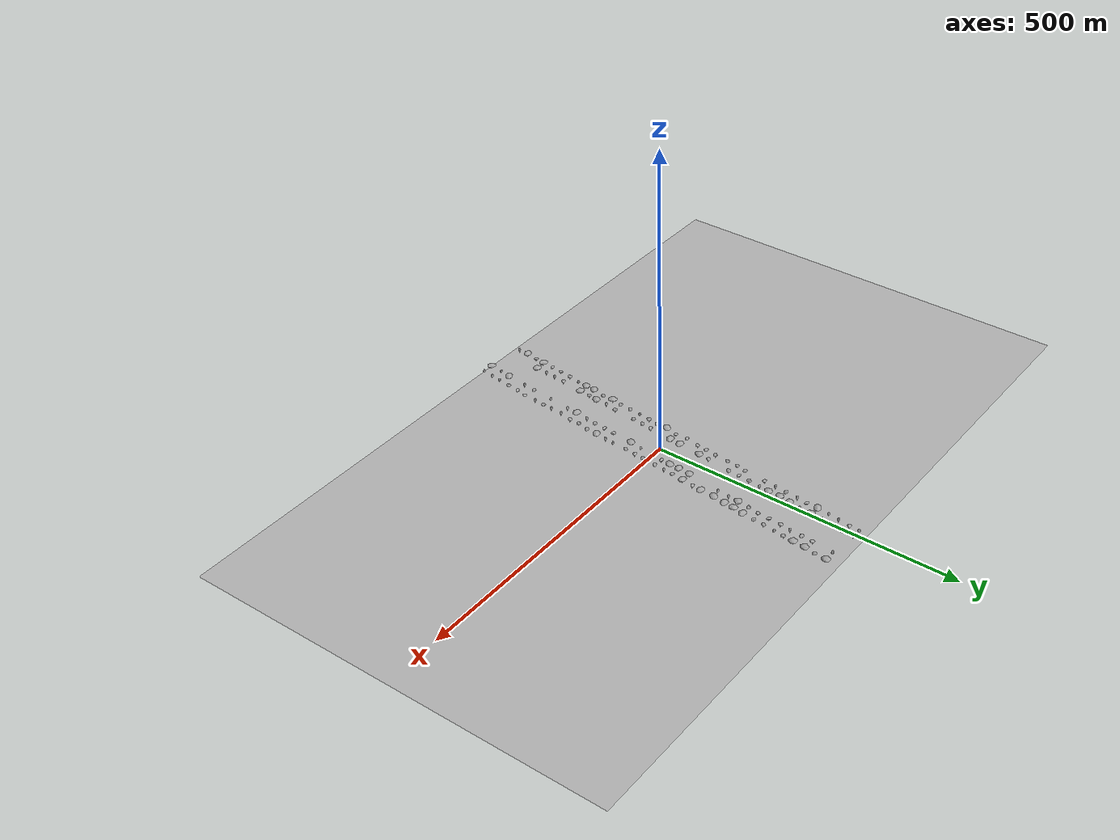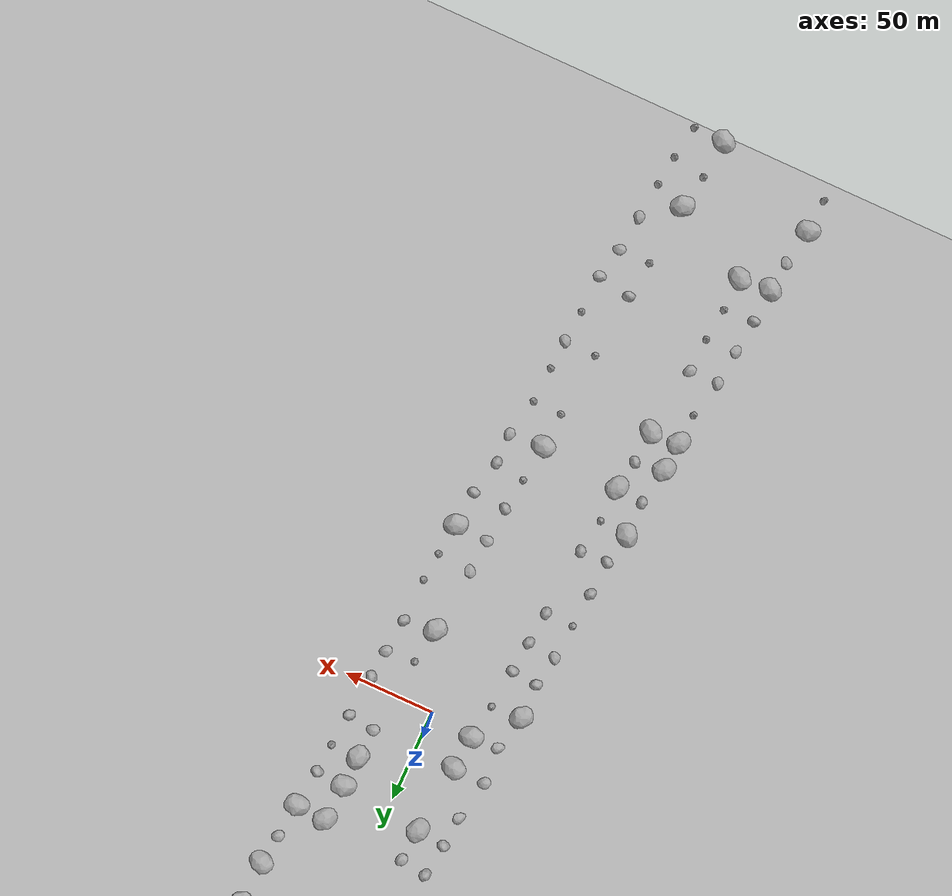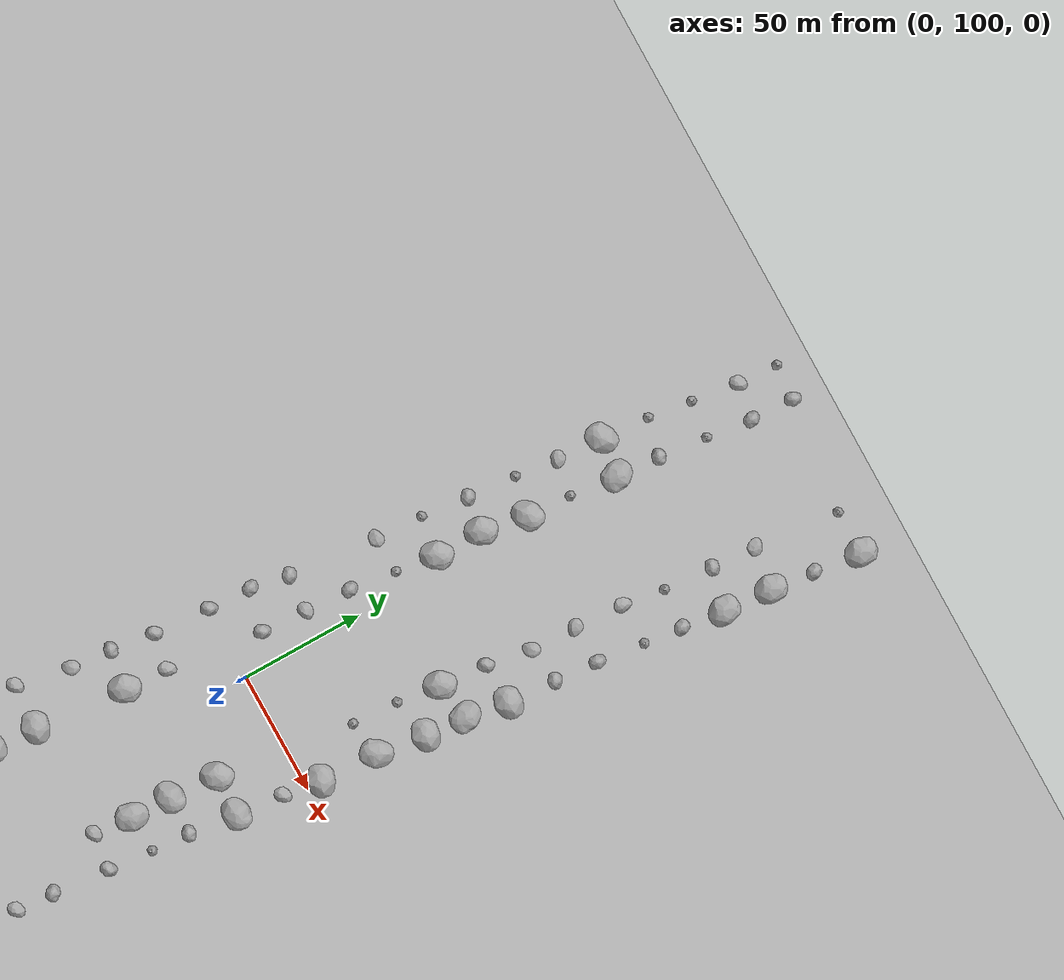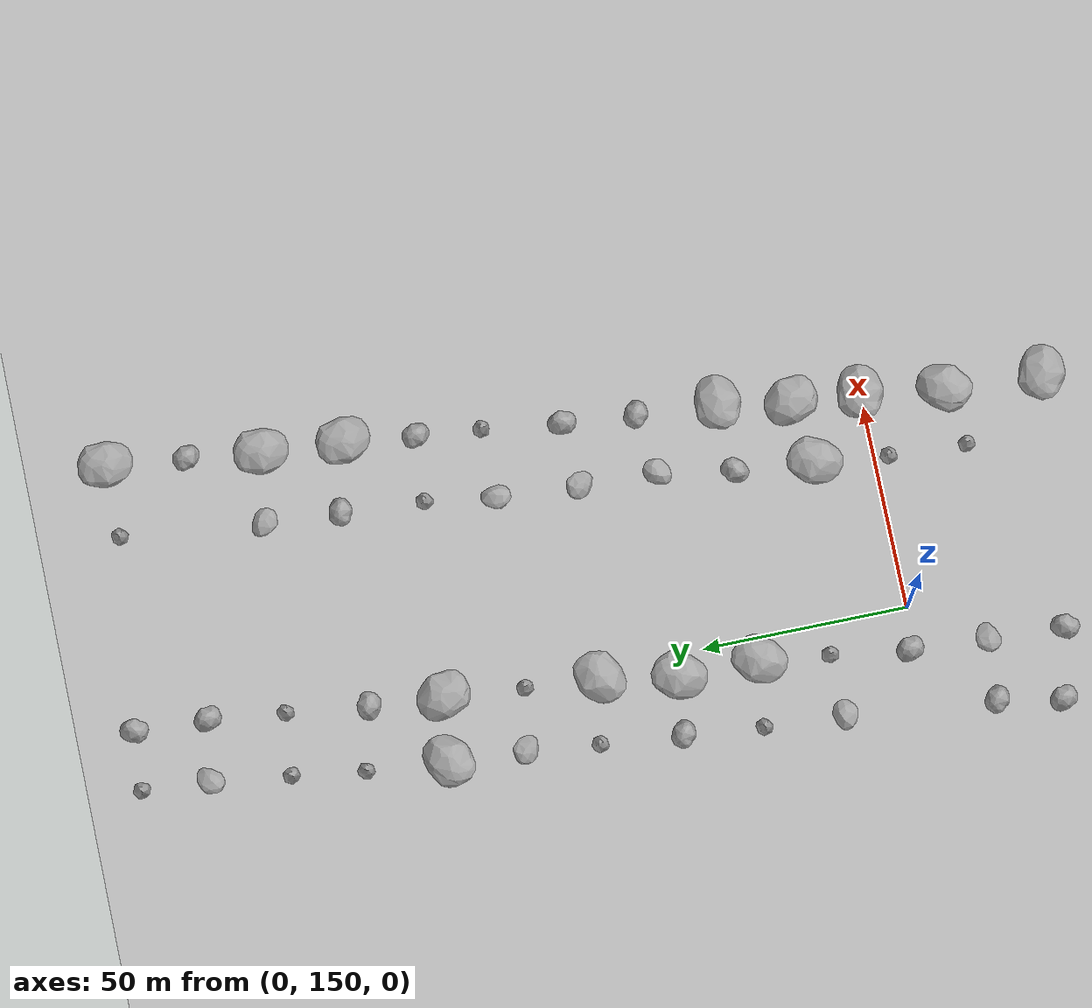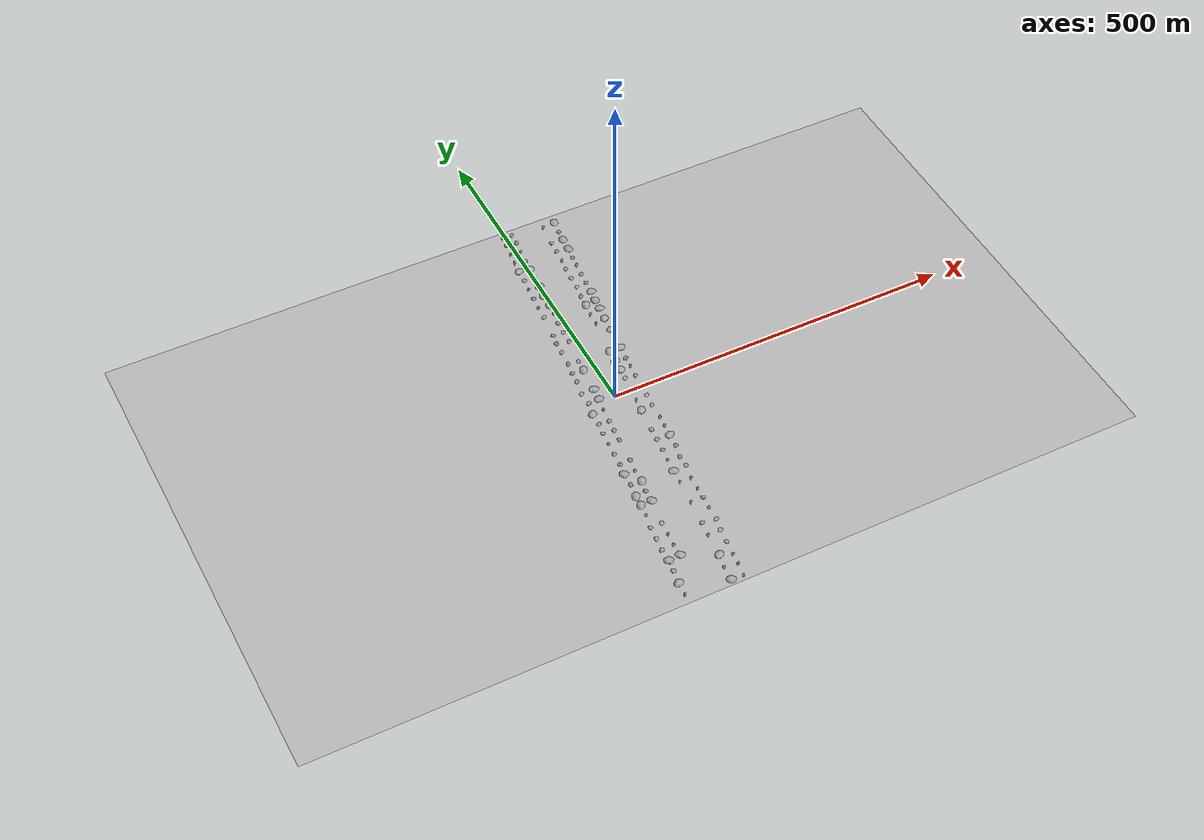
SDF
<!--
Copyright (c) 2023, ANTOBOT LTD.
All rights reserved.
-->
<?xml version="1.0" ?>
<sdf version="1.4">
  <world name="default">

    <!-- A global light source -->
    <include>
      <uri>model://sun</uri>
    </include>

    <light type="directional" name="sun_1">
      <cast_shadows>true</cast_shadows>
      <pose>75 75 50 0 0 0</pose>
      <diffuse>0.8 0.8 0.8 1</diffuse>
      <specular>0.8 0.8 0.8 1</specular>
      <attenuation>
        <range>1000</range>
        <constant>0.9</constant>
        <linear>0.01</linear>
        <quadratic>0.001</quadratic>
      </attenuation>
      <direction>-0.5 0.1 -0.9</direction>
    </light>

    <scene>
      <sky>
        <clouds>
          <speed>12</speed>
        </clouds>
      </sky>
    </scene>

    <!-- Combined World -->
    <model name="windsor_terrain">
      <include>
        <pose>0 0 0 0 0 0</pose>
        <uri>model://windsor_terrain</uri>
      </include>
    </model>

[start]
    <model name="tree0">
      <include>
        <pose>69.63945007324219 312.5484619140625 -0.010585967451334 0.019601332173173867 -0.009493055838370462 2.4453329482619153 </pose>
        <scale>1.0931128544964075 0.8769362852459166 0.8393916551556391 </scale>
        <uri>model://windsor_tree_3</uri>
      </include>
    </model>

    <model name="tree1">
      <include>
        <pose>67.50929260253906 295.0337829589844 -0.010585967451334 -0.006051572784280932 0.006144942787973461 1.8560908090820818 </pose>
        <scale>0.9721722166989776 1.108634498845052 0.9939109545550641 </scale>
        <uri>model://windsor_tree_1</uri>
      </include>
    </model>

    <model name="tree2">
      <include>
        <pose>66.08917999267578 275.15228271484375 -0.010585967451334 -0.019048987979365 0.005220290297220893 2.1212056852900214 </pose>
        <scale>0.89058990072401 1.0460393944888573 0.8652396571809416 </scale>
        <uri>model://windsor_tree_1</uri>
      </include>
    </model>

    <model name="tree3">
      <include>
        <pose>63.959022521972656 257.6375732421875 -0.010585967451334 -0.018665837172359593 -0.01887259090619908 2.3844670330792996 </pose>
        <scale>1.0845305431239491 0.8198932848069501 1.0102477034304058 </scale>
        <uri>model://windsor_tree_3</uri>
      </include>
    </model>

    <model name="tree4">
      <include>
        <pose>71.76962280273438 332.1932678222656 -0.010585967451334 0.011158046879193619 0.017123873350229354 1.8979454718723958 </pose>
        <scale>1.042212518969027 0.9467706627091457 1.1642928820945122 </scale>
        <uri>model://windsor_tree_1</uri>
      </include>
    </model>

    <model name="tree5">
      <include>
        <pose>54.491634368896484 331.48321533203125 -0.010585967451334 -0.012472618356515409 -0.018236357282290283 0.18090401457163585 </pose>
        <scale>1.1299864324013127 1.0421977249993992 1.0338838775833383 </scale>
        <uri>model://windsor_tree_4</uri>
      </include>
    </model>

    <model name="tree6">
      <include>
        <pose>60.4371452331543 221.88873291015625 -0.010585967451334 -0.0011259919725913614 0.0037464375983502288 -1.30473630646026 </pose>
        <scale>0.9780405794727429 0.9107927291363028 0.9105920940411283 </scale>
        <uri>model://windsor_tree_3</uri>
      </include>
    </model>

    <model name="tree7">
      <include>
        <pose>58.30698776245117 204.37405395507812 -0.010585967451334 -0.008860788803581512 0.003430250134960868 3.0163904898984337 </pose>
        <scale>1.0606244913573992 0.9917846165029451 0.8103041737397406 </scale>
        <uri>model://windsor_tree_3</uri>
      </include>
    </model>

    <model name="tree8">
      <include>
        <pose>56.88687515258789 184.4925537109375 -0.010585967451334 -0.01660571444586669 0.009926397220078771 -2.8945898981156235 </pose>
        <scale>1.1570101107029385 0.8994480895798397 0.9763418032192646 </scale>
        <uri>model://windsor_tree_1</uri>
      </include>
    </model>

    <model name="tree9">
      <include>
        <pose>54.756717681884766 166.97784423828125 -0.010585967451334 0.009748468193394918 -0.0048230289287691346 -0.8998418273340549 </pose>
        <scale>1.1756060179687389 1.1513030347317854 0.8848140074365209 </scale>
        <uri>model://windsor_tree_1</uri>
      </include>
    </model>

    <model name="tree10">
      <include>
        <pose>62.567317962646484 241.53353881835938 -0.010585967451334 0.013425772802577996 0.01406100051615446 -0.7555159430062188 </pose>
        <scale>0.9916607770605524 0.8772890445118406 1.0193223432664518 </scale>
        <uri>model://windsor_tree_4</uri>
      </include>
    </model>

    <model name="tree11">
      <include>
        <pose>49.87153625488281 129.86569213867188 -0.010585967451334 -0.019075425676043197 -0.00712817525705018 -1.9024540423311873 </pose>
        <scale>1.0808418244532312 0.8287099632588234 0.8311636354675833 </scale>
        <uri>model://windsor_tree_1</uri>
      </include>
    </model>

    <model name="tree12">
      <include>
        <pose>48.423030853271484 106.55696868896484 -0.010585967451334 0.0002504762060992344 0.016373257540709337 3.0971074785802357 </pose>
        <scale>1.182487400972857 0.8767355917900591 0.9958074327899978 </scale>
        <uri>model://windsor_tree_1</uri>
      </include>
    </model>

    <model name="tree13">
      <include>
        <pose>47.0029182434082 90.765380859375 -0.010585967451334 0.008800022877509625 0.007841457453176357 -1.44166016349858 </pose>
        <scale>0.8665808076284928 0.8030254077571153 0.926445863412109 </scale>
        <uri>model://windsor_tree_2</uri>
      </include>
    </model>

    <model name="tree14">
      <include>
        <pose>44.87276077270508 72.22819519042969 -0.010585967451334 0.015609339114548263 0.007126699188909541 0.35393338545886044 </pose>
        <scale>1.1246648678967528 1.1274400075111384 0.9573451229999534 </scale>
        <uri>model://windsor_tree_1</uri>
      </include>
    </model>

    <model name="tree15">
      <include>
        <pose>52.34253692626953 150.19215393066406 -0.010585967451334 0.017938573415547675 -0.01774870075423803 -2.99774287205987 </pose>
        <scale>0.9779655010169124 0.9976680504996971 0.9100091134213555 </scale>
        <uri>model://windsor_tree_1</uri>
      </include>
    </model>

    <model name="tree16">
      <include>
        <pose>42.62898635864258 52.0247917175293 -0.010585967451334 -0.004773336372412902 0.002443938794598824 0.0039417067369535985 </pose>
        <scale>0.9732192674300547 1.019596417979478 0.8804759940947003 </scale>
        <uri>model://windsor_tree_3</uri>
      </include>
    </model>

    <model name="tree17">
      <include>
        <pose>41.2088737487793 36.23320388793945 -0.010585967451334 0.013356492506540429 0.0015852397654074896 -0.5014905891358064 </pose>
        <scale>0.858498258716029 1.1354633232729152 1.1947093957590278 </scale>
        <uri>model://windsor_tree_4</uri>
      </include>
    </model>

    <model name="tree18">
      <include>
        <pose>39.07871627807617 17.69601821899414 -0.010585967451334 -0.006494052569999803 -0.01697678739626689 -2.2250201152106226 </pose>
        <scale>1.1078196845472081 1.1747623847729145 0.9156489046380698 </scale>
        <uri>model://windsor_tree_3</uri>
      </include>
    </model>

    <model name="tree19">
      <include>
        <pose>37.51659393310547 -5.2339935302734375 -0.010585967451334 -0.0026392210082761026 0.010945509133011268 -0.3862882947617856 </pose>
        <scale>0.80057823208718 0.8174478886803401 0.8038953397974511 </scale>
        <uri>model://windsor_tree_3</uri>
      </include>
    </model>

    <model name="tree20">
      <include>
        <pose>36.09648132324219 -21.02558135986328 -0.010585967451334 -0.010093177400587364 -0.01748387417605195 -1.5205294173806159 </pose>
        <scale>0.9719734874556688 1.0598957914682356 0.8655094422597407 </scale>
        <uri>model://windsor_tree_2</uri>
      </include>
    </model>

    <model name="tree21">
      <include>
        <pose>33.96632385253906 -39.562767028808594 -0.010585967451334 -0.012788961830941959 -0.018741631912187865 -1.8754901131551502 </pose>
        <scale>0.9093053108945753 1.0298631988702605 1.056211446109351 </scale>
        <uri>model://windsor_tree_3</uri>
      </include>
    </model>

    <model name="tree22">
      <include>
        <pose>33.42668151855469 -62.83360290527344 -0.010585967451334 -0.0027886545471153754 -0.015306109327201573 -1.1916182997497278 </pose>
        <scale>0.9297910859542878 0.8331781945468886 0.9983353119926865 </scale>
        <uri>model://windsor_tree_4</uri>
      </include>
    </model>

    <model name="tree23">
      <include>
        <pose>32.006568908691406 -78.62519073486328 -0.010585967451334 0.013459065467844259 -0.016924401364660543 -0.8203334818268129 </pose>
        <scale>1.1216102062440167 1.0222889637026937 1.120111718992169 </scale>
        <uri>model://windsor_tree_4</uri>
      </include>
    </model>

    <model name="tree24">
      <include>
        <pose>29.87641143798828 -97.1623764038086 -0.010585967451334 0.004206252816814516 0.0040040622772044045 -2.3669190138719123 </pose>
        <scale>0.9269214646352564 0.849784727782253 0.8934057930881033 </scale>
        <uri>model://windsor_tree_1</uri>
      </include>
    </model>

    <model name="tree25">
      <include>
        <pose>28.513107299804688 -115.9078140258789 -0.010585967451334 -0.011655941471647249 0.018269601571639617 -2.908246407917132 </pose>
        <scale>1.1952943178846973 1.0120149109897352 0.9112996854355019 </scale>
        <uri>model://windsor_tree_3</uri>
      </include>
    </model>

    <model name="tree26">
      <include>
        <pose>24.082368850708008 -134.6532440185547 -0.010585967451334 -0.004304873541902059 -0.018551270808193396 1.8627045169297438 </pose>
        <scale>1.0425459324592419 1.1269853713951632 0.9674717289794915 </scale>
        <uri>model://windsor_tree_3</uri>
      </include>
    </model>

    <model name="tree27">
      <include>
        <pose>24.764020919799805 -151.69454956054688 -0.010585967451334 -0.011844173147038188 0.016444955725431542 -0.6274809444185423 </pose>
        <scale>1.0874021629811428 0.9281841931153882 0.8533672451068072 </scale>
        <uri>model://windsor_tree_2</uri>
      </include>
    </model>

    <model name="tree28">
      <include>
        <pose>19.992456436157227 -172.8257598876953 -0.010585967451334 0.003541161784974295 -0.001955178054427322 -0.9613107702887955 </pose>
        <scale>0.8077755004700979 1.084816613827202 1.0239666639437652 </scale>
        <uri>model://windsor_tree_4</uri>
      </include>
    </model>

    <model name="tree29">
      <include>
        <pose>18.96997833251953 -192.5936737060547 -0.010585967451334 0.0014865065703151617 0.010099465178746773 -0.7159012892227556 </pose>
        <scale>0.8200856858175741 0.9908912404978308 0.8822357593230478 </scale>
        <uri>model://windsor_tree_4</uri>
      </include>
    </model>

    <model name="tree30">
      <include>
        <pose>18.629152297973633 -208.6125030517578 -0.010585967451334 -0.004240063679798262 -0.006453917861876742 0.10884879296450611 </pose>
        <scale>0.8876864034665499 1.0458843816864802 0.8283975223105581 </scale>
        <uri>model://windsor_tree_2</uri>
      </include>
    </model>

    <model name="tree31">
      <include>
        <pose>16.92502212524414 -226.67628479003906 -0.010585967451334 0.019318159883009448 0.007787990392181036 1.7378007068591281 </pose>
        <scale>0.9803580813967522 1.1300818328759479 0.975748086119617 </scale>
        <uri>model://windsor_tree_4</uri>
      </include>
    </model>

    <model name="tree32">
      <include>
        <pose>15.902544021606445 -247.4666748046875 -0.010585967451334 -0.008090950216554735 0.013469729226868472 1.3008982445707296 </pose>
        <scale>0.8349495950961855 1.0564427072409397 0.90634198413428 </scale>
        <uri>model://windsor_tree_2</uri>
      </include>
    </model>

    <model name="tree33">
      <include>
        <pose>12.494283676147461 -265.53045654296875 -0.010585967451334 0.010582581472480018 -0.011962208653695105 -1.8534865958106563 </pose>
        <scale>1.1893890628136006 0.8596266382452251 1.0816352040967656 </scale>
        <uri>model://windsor_tree_2</uri>
      </include>
    </model>

    <model name="tree34">
      <include>
        <pose>10.44932746887207 -284.9575500488281 -0.010585967451334 -0.007519324442431606 -0.010861727624230216 -0.27894379574872463 </pose>
        <scale>1.1554483680051293 1.1342763587951354 0.8104841564053403 </scale>
        <uri>model://windsor_tree_2</uri>
      </include>
    </model>

    <model name="tree35">
      <include>
        <pose>8.063545227050781 -305.4071044921875 -0.010585967451334 0.019519868808952293 -0.008330697560488307 -0.5664340382321735 </pose>
        <scale>0.8600260507848495 0.9631965749232724 0.844054842954109 </scale>
        <uri>model://windsor_tree_4</uri>
      </include>
    </model>

    <model name="tree36">
      <include>
        <pose>6.018589019775391 -322.1075744628906 -0.010585967451334 -0.00993671255468099 0.014669872067650549 -1.3435381803071913 </pose>
        <scale>0.9808108269495062 0.8334536494449462 1.0768986070826947 </scale>
        <uri>model://windsor_tree_4</uri>
      </include>
    </model>

    <model name="tree37">
      <include>
        <pose>2.9511544704437256 -340.8529968261719 -0.010585967451334 -0.010273617911829503 -0.015554404369554048 -2.4209008109879466 </pose>
        <scale>1.1782775830367989 0.9567231161512495 1.16984113327098 </scale>
        <uri>model://windsor_tree_4</uri>
      </include>
    </model>

    <model name="tree38">
      <include>
        <pose>-13.408496856689453 -340.1713562011719 -0.010585967451334 0.015174704472317068 0.012065953082051103 -0.1674015999405163 </pose>
        <scale>0.9403706079773463 0.8652989082233871 0.9219186458104625 </scale>
        <uri>model://windsor_tree_1</uri>
      </include>
    </model>

    <model name="tree39">
      <include>
        <pose>-12.04519271850586 -318.6993103027344 -0.010585967451334 0.0020593367615616837 0.010756110066351698 2.846293654788967 </pose>
        <scale>0.8216055297537392 1.0048071193354784 1.1164990076109977 </scale>
        <uri>model://windsor_tree_4</uri>
      </include>
    </model>

    <model name="tree40">
      <include>
        <pose>-8.636932373046875 -300.2947082519531 -0.010585967451334 -0.006514140848431271 0.013014786916251155 -2.270641121985018 </pose>
        <scale>0.9128839623260087 0.8503296282258304 0.8760801023190015 </scale>
        <uri>model://windsor_tree_1</uri>
      </include>
    </model>

    <model name="tree41">
      <include>
        <pose>-4.887845993041992 -265.18963623046875 -0.010585967451334 -0.019928571750969865 0.01889062241889065 2.0710005035036363 </pose>
        <scale>1.0882626633463948 1.0656740177280928 1.176864092877124 </scale>
        <uri>model://windsor_tree_4</uri>
      </include>
    </model>

    <model name="tree42">
      <include>
        <pose>-2.8428895473480225 -244.7400665283203 -0.010585967451334 -0.010322053509391962 0.005566298777711542 -2.737134658632552 </pose>
        <scale>0.9775546878012985 0.8389097772989831 1.0390022602791305 </scale>
        <uri>model://windsor_tree_3</uri>
      </include>
    </model>

    <model name="tree43">
      <include>
        <pose>0.5653712749481201 -208.6125030517578 -0.010585967451334 3.3288971713361926e-05 0.01016817421381339 0.6658654952742324 </pose>
        <scale>0.8203366847173872 0.9761945457637566 0.9718630797142862 </scale>
        <uri>model://windsor_tree_4</uri>
      </include>
    </model>

    <model name="tree44">
      <include>
        <pose>4.314457893371582 -172.4849395751953 -0.010585967451334 -0.01683031609315668 0.019767751338151018 2.507395565365831 </pose>
        <scale>1.0226141365910346 1.0025523096096205 1.1892783067110195 </scale>
        <uri>model://windsor_tree_4</uri>
      </include>
    </model>

    <model name="tree45">
      <include>
        <pose>4.996109962463379 -153.739501953125 -0.010585967451334 0.00703100068166505 0.001785978327793817 -3.0171757285567806 </pose>
        <scale>1.0324930389144058 0.9208189984215012 0.8445395711055145 </scale>
        <uri>model://windsor_tree_1</uri>
      </include>
    </model>

    <model name="tree46">
      <include>
        <pose>7.722718238830566 -132.60829162597656 -0.010585967451334 0.0016127766179614943 0.017845154124859295 1.0882602815366176 </pose>
        <scale>1.0560991460545197 1.149998484019906 0.914545328328238 </scale>
        <uri>model://windsor_tree_4</uri>
      </include>
    </model>

    <model name="tree47">
      <include>
        <pose>9.767674446105957 -114.88533020019531 -0.010585967451334 0.016407336614799515 0.018879227840539786 2.805476102074888 </pose>
        <scale>1.0990351845875952 1.080904191115248 1.0618922907730195 </scale>
        <uri>model://windsor_tree_3</uri>
      </include>
    </model>

    <model name="tree48">
      <include>
        <pose>11.812630653381348 -95.799072265625 -0.010585967451334 -0.01622444389649435 0.015078948414963048 -2.088628076464069 </pose>
        <scale>0.9620850953395124 0.8606807426751955 1.1944633117191559 </scale>
        <uri>model://windsor_tree_2</uri>
      </include>
    </model>

    <model name="tree49">
      <include>
        <pose>12.835108757019043 -77.39446258544922 -0.010585967451334 -0.007596849815822888 0.003051265224805623 -3.076942037715102 </pose>
        <scale>0.8607521745342284 0.9345293636997232 0.8111454107500555 </scale>
        <uri>model://windsor_tree_2</uri>
      </include>
    </model>

    <model name="tree50">
      <include>
        <pose>16.92502212524414 -42.221214294433594 -0.010585967451334 0.002362079055075267 0.019803456297878396 -1.8334530225546888 </pose>
        <scale>1.0870264134598278 0.9965985297692274 1.1467584043475625 </scale>
        <uri>model://windsor_tree_1</uri>
      </include>
    </model>

    <model name="tree51">
      <include>
        <pose>19.787961959838867 -21.771650314331055 -0.010585967451334 -0.003895069202556608 -0.01171207116908802 -0.08210429130554742 </pose>
        <scale>1.1346661850122992 1.1427269899177843 0.8622216054645715 </scale>
        <uri>model://windsor_tree_4</uri>
      </include>
    </model>

    <model name="tree52">
      <include>
        <pose>24.695858001708984 19.536470413208008 -0.010585967451334 -0.008727157080272128 0.018714370813191366 -1.8310990571848274 </pose>
        <scale>1.0768497457789512 1.1460511800735371 1.18059599501037 </scale>
        <uri>model://windsor_tree_2</uri>
      </include>
    </model>

    <model name="tree53">
      <include>
        <pose>26.115966796875 35.39434814453125 -0.010585967451334 0.001814394216173465 0.013293491703388473 -1.5120113308069818 </pose>
        <scale>1.1811462246912718 0.8438738139128739 1.0688622540256187 </scale>
        <uri>model://windsor_tree_1</uri>
      </include>
    </model>

    <model name="tree54">
      <include>
        <pose>26.826021194458008 52.909019470214844 -0.010585967451334 0.01841033393066654 -0.002373311049072603 0.4939889262216419 </pose>
        <scale>0.8004556196964251 0.8229174569750696 1.018440987441535 </scale>
        <uri>model://windsor_tree_1</uri>
      </include>
    </model>

    <model name="tree55">
      <include>
        <pose>28.246129989624023 72.79054260253906 -0.010585967451334 -0.013645098306204329 0.004333679408359336 1.1285426624206685 </pose>
        <scale>1.1102729642001075 1.1412424332923996 0.9149408160599743 </scale>
        <uri>model://windsor_tree_1</uri>
      </include>
    </model>

    <model name="tree56">
      <include>
        <pose>35.82004165649414 127.93809509277344 -0.010585967451334 0.007393702243919817 0.0028831290355297162 1.5824608018218034 </pose>
        <scale>0.834290477388276 1.0676089167625966 1.1639095292208856 </scale>
        <uri>model://windsor_tree_4</uri>
      </include>
    </model>

    <model name="tree57">
      <include>
        <pose>36.530094146728516 147.10955810546875 -0.010585967451334 -0.01740758525676159 -0.01662604016165041 -2.9972143041398596 </pose>
        <scale>1.0965291919878464 1.0573949542849197 1.1475529954795796 </scale>
        <uri>model://windsor_tree_4</uri>
      </include>
    </model>

    <model name="tree58">
      <include>
        <pose>38.660255432128906 165.33428955078125 -0.010585967451334 0.0008924341308311629 -0.006555650341604461 1.4206905890092636 </pose>
        <scale>1.1088211153626006 1.0439131574725249 1.1891537131283987 </scale>
        <uri>model://windsor_tree_1</uri>
      </include>
    </model>

    <model name="tree59">
      <include>
        <pose>40.553733825683594 184.26907348632812 -0.010585967451334 -8.645049316175629e-05 0.007529528190301334 1.1859139437991062 </pose>
        <scale>0.8798517481636717 0.9103399679928151 1.0199002406735187 </scale>
        <uri>model://windsor_tree_3</uri>
      </include>
    </model>

    <model name="tree60">
      <include>
        <pose>43.393951416015625 202.49380493164062 -0.010585967451334 0.011960768301215233 0.0005857779485471774 1.8623817064784798 </pose>
        <scale>1.0791415358273961 0.9082193159762793 0.8938283839957649 </scale>
        <uri>model://windsor_tree_2</uri>
      </include>
    </model>

    <model name="tree61">
      <include>
        <pose>44.10400390625 220.95521545410156 -0.010585967451334 -0.012448447001600482 -0.00829243917076634 -2.9342519680151926 </pose>
        <scale>1.0858502899514824 1.047480610211256 1.1216892014906246 </scale>
        <uri>model://windsor_tree_2</uri>
      </include>
    </model>

    <model name="tree62">
      <include>
        <pose>45.99748229980469 241.3101043701172 -0.010585967451334 -0.011022427893833467 0.0018600554501881326 -0.6490186694250726 </pose>
        <scale>1.0024203723467953 0.9310982868032769 1.0104654736330807 </scale>
        <uri>model://windsor_tree_2</uri>
      </include>
    </model>

    <model name="tree63">
      <include>
        <pose>48.12764358520508 258.5881042480469 -0.010585967451334 -0.001968697884490375 0.007712771567025302 -2.640562067828058 </pose>
        <scale>0.8571178237744014 0.9071925698732076 0.8148569906679877 </scale>
        <uri>model://windsor_tree_4</uri>
      </include>
    </model>

    <model name="tree64">
      <include>
        <pose>49.311065673828125 278.4696350097656 -0.010585967451334 0.019760182524855497 0.010002960534057817 -3.030570751368587 </pose>
        <scale>1.045460907794262 0.8829659372051787 0.9408513203923525 </scale>
        <uri>model://windsor_tree_3</uri>
      </include>
    </model>

    <model name="tree65">
      <include>
        <pose>50.967857360839844 297.4044189453125 -0.010585967451334 0.010624796751194824 -0.004244103461257313 0.3045758285603233 </pose>
        <scale>1.1085216016707744 0.9569460521060222 1.1504596653661727 </scale>
        <uri>model://windsor_tree_2</uri>
      </include>
    </model>

    <model name="tree66">
      <include>
        <pose>7.654541015625 336.9307861328125 -0.010585967451334 -0.0023255197557791214 -0.003344689745159054 -1.5652231183293275 </pose>
        <scale>0.846232239212943 1.0459292348136018 0.9987635751376073 </scale>
        <uri>model://windsor_tree_3</uri>
      </include>
    </model>

    <model name="tree67">
      <include>
        <pose>-7.019914627075195 338.35089111328125 -0.010585967451334 -0.007655302961649388 -0.00261378971516495 -1.9960377308354957 </pose>
        <scale>1.1973443221946756 0.8865018269415631 0.9367680352735491 </scale>
        <uri>model://windsor_tree_4</uri>
      </include>
    </model>

    <model name="tree68">
      <include>
        <pose>-7.729969024658203 321.5462646484375 -0.010585967451334 -0.016039005720715024 0.0017903818183515573 -1.4108606475146186 </pose>
        <scale>0.8402354240035312 1.1460850625813972 1.0305449230222263 </scale>
        <uri>model://windsor_tree_2</uri>
      </include>
    </model>

    <model name="tree69">
      <include>
        <pose>-10.570186614990234 302.6114807128906 -0.010585967451334 0.017484602581105044 -0.01564895124023359 -1.4990624028347113 </pose>
        <scale>0.8838399626338889 0.8577049541432195 0.8183975477319099 </scale>
        <uri>model://windsor_tree_4</uri>
      </include>
    </model>

    <model name="tree70">
      <include>
        <pose>-12.937034606933594 284.860107421875 -0.010585967451334 0.006867142940379621 -0.0081757510153885 0.7059882584868435 </pose>
        <scale>0.8623611191425725 1.154885406853552 1.0219643272522214 </scale>
        <uri>model://windsor_tree_4</uri>
      </include>
    </model>

    <model name="tree71">
      <include>
        <pose>-15.067197799682617 264.7419128417969 -0.010585967451334 -0.0017544984074060986 -0.002782210809310435 -2.3379422355003587 </pose>
        <scale>1.0967935826400481 0.9077435423249729 0.9891606859897478 </scale>
        <uri>model://windsor_tree_1</uri>
      </include>
    </model>

    <model name="tree72">
      <include>
        <pose>-16.01393699645996 246.28050231933594 -0.010585967451334 -8.019319504494471e-05 -0.0019825796569657647 -2.6728777321486477 </pose>
        <scale>0.8098338314030324 0.8690910449736912 1.1555614907084069 </scale>
        <uri>model://windsor_tree_2</uri>
      </include>
    </model>

    <model name="tree73">
      <include>
        <pose>-17.90741539001465 229.23919677734375 -0.010585967451334 -0.015581873497758147 0.015551802536968643 -2.982351000928216 </pose>
        <scale>0.9260063466396922 1.0049111177159273 1.0279863505706706 </scale>
        <uri>model://windsor_tree_4</uri>
      </include>
    </model>

    <model name="tree74">
      <include>
        <pose>-20.037578582763672 209.12098693847656 -0.010585967451334 -0.01937523972678521 -0.0016399001214041087 2.980350380214071 </pose>
        <scale>1.0527685648151042 0.8447375519089817 1.1762362877977357 </scale>
        <uri>model://windsor_tree_3</uri>
      </include>
    </model>

    <model name="tree75">
      <include>
        <pose>-21.694372177124023 189.71282958984375 -0.010585967451334 0.006897893452402833 -0.013641188855204529 0.24452657607302664 </pose>
        <scale>0.906065395419089 1.1500061156973218 1.1783224778884644 </scale>
        <uri>model://windsor_tree_4</uri>
      </include>
    </model>

    <model name="tree76">
      <include>
        <pose>-22.877796173095703 170.77804565429688 -0.010585967451334 0.016319428264872 -0.004503079281892917 1.0695788872160095 </pose>
        <scale>0.8939258004159025 1.1832971552249978 1.0271071747752973 </scale>
        <uri>model://windsor_tree_2</uri>
      </include>
    </model>

    <model name="tree77">
      <include>
        <pose>-26.901437759399414 134.09190368652344 -0.010585967451334 -0.014543797516832617 -0.013182085619088714 2.893693351003107 </pose>
        <scale>0.8999059772642016 0.9314458120375527 1.0397536298067582 </scale>
        <uri>model://windsor_tree_3</uri>
      </include>
    </model>

    <model name="tree78">
      <include>
        <pose>-29.031600952148438 118.23402404785156 -0.010585967451334 0.006117467476372155 0.006094592780927027 -0.8101477550800187 </pose>
        <scale>0.8219545977619676 0.8656793146374995 0.9115234600916572 </scale>
        <uri>model://windsor_tree_3</uri>
      </include>
    </model>

    <model name="tree79">
      <include>
        <pose>-30.215024948120117 100.24598693847656 -0.010585967451334 0.004774064232702976 0.004526300609178947 -1.8384214243872923 </pose>
        <scale>1.003748340053552 0.817054463792947 0.9809892072980207 </scale>
        <uri>model://windsor_tree_3</uri>
      </include>
    </model>

    <model name="tree80">
      <include>
        <pose>-32.10850143432617 77.99761962890625 -0.010585967451334 0.018853794283151124 -0.015530037442415549 1.339891599901819 </pose>
        <scale>1.097863810743402 1.1119945450178994 0.8897333795169747 </scale>
        <uri>model://windsor_tree_3</uri>
      </include>
    </model>

    <model name="tree81">
      <include>
        <pose>-34.00197982788086 59.77289581298828 -0.010585967451334 -0.01593053673449709 -0.007649040012646324 0.13668591328970336 </pose>
        <scale>0.9770575580059707 0.8634063555746359 0.8889114111951556 </scale>
        <uri>model://windsor_tree_3</uri>
      </include>
    </model>

    <model name="tree82">
      <include>
        <pose>-36.13214111328125 43.20496368408203 -0.010585967451334 -0.017169044257600477 0.0053346639379002435 2.0040313289578298 </pose>
        <scale>1.1782282820724461 0.8166149072268059 1.1948701120503797 </scale>
        <uri>model://windsor_tree_2</uri>
      </include>
    </model>

    <model name="tree83">
      <include>
        <pose>-39.919097900390625 20.483226776123047 -0.010585967451334 0.019570799314644245 0.014517424546709911 -1.546099742340614 </pose>
        <scale>1.003435379347927 1.1107159778678373 1.0980103874390148 </scale>
        <uri>model://windsor_tree_2</uri>
      </include>
    </model>

    <model name="tree84">
      <include>
        <pose>-39.44572830200195 1.3117618560791016 -0.010585967451334 0.015537066937811986 0.0070384567904648206 1.7008841868508582 </pose>
        <scale>0.9180769433498883 1.1954229199281579 1.0620412766084424 </scale>
        <uri>model://windsor_tree_2</uri>
      </include>
    </model>

    <model name="tree85">
      <include>
        <pose>-43.46936798095703 -19.516496658325195 -0.010585967451334 0.014512778459147013 -0.011327237096305237 -1.9015220809182518 </pose>
        <scale>1.1349288857019804 1.1249785628668674 0.8502811329568424 </scale>
        <uri>model://windsor_tree_1</uri>
      </include>
    </model>

    <model name="tree86">
      <include>
        <pose>-43.706050872802734 -37.7412223815918 -0.010585967451334 0.006249953486050775 0.01143368252271609 -2.3833587161028795 </pose>
        <scale>1.0964886689511728 1.0753186779914925 0.857054879176749 </scale>
        <uri>model://windsor_tree_3</uri>
      </include>
    </model>

    <model name="tree87">
      <include>
        <pose>-46.072898864746094 -54.072471618652344 -0.010585967451334 -0.0001292138518493545 -0.008004254630154884 0.0009523299048392886 </pose>
        <scale>0.9326227451888212 0.8933364877277123 1.089017564820224 </scale>
        <uri>model://windsor_tree_2</uri>
      </include>
    </model>

    <model name="tree88">
      <include>
        <pose>-48.43974685668945 -73.24393463134766 -0.010585967451334 -0.009622205566196805 -0.00775507768662885 -2.303617984728165 </pose>
        <scale>0.9049644958328371 0.8248705830085022 0.9611164093680085 </scale>
        <uri>model://windsor_tree_4</uri>
      </include>
    </model>

    <model name="tree89">
      <include>
        <pose>-49.6231689453125 -92.41539764404297 -0.010585967451334 -0.016343617768426234 0.015031281786993301 1.3110173482070286 </pose>
        <scale>1.0245204031551516 0.9464292186200203 1.1808142308488268 </scale>
        <uri>model://windsor_tree_3</uri>
      </include>
    </model>

    <model name="tree90">
      <include>
        <pose>-51.043277740478516 -111.58686065673828 -0.010585967451334 -0.004300285696009456 0.002949953640576611 2.9615274166348216 </pose>
        <scale>0.8326216916531234 0.9606081300126543 0.9890007717006186 </scale>
        <uri>model://windsor_tree_3</uri>
      </include>
    </model>

    <model name="tree91">
      <include>
        <pose>-53.410125732421875 -129.33822631835938 -0.010585967451334 0.01293785673308841 0.00284093313475596 -0.644885174145351 </pose>
        <scale>1.0193373416752163 0.8369097625392983 1.0834470079562664 </scale>
        <uri>model://windsor_tree_1</uri>
      </include>
    </model>

    <model name="tree92">
      <include>
        <pose>-54.59354782104492 -147.56295776367188 -0.010585967451334 0.005311589681363152 -0.017619770181912166 1.9851419346637091 </pose>
        <scale>1.1599874732829292 1.1183790646937233 1.0827794829888397 </scale>
        <uri>model://windsor_tree_3</uri>
      </include>
    </model>

    <model name="tree93">
      <include>
        <pose>-57.670448303222656 -168.15452575683594 -0.010585967451334 0.010027172177596477 -0.009819222534430785 1.2926948597559096 </pose>
        <scale>0.9837076159299474 1.0544615410946527 0.8673489947875769 </scale>
        <uri>model://windsor_tree_1</uri>
      </include>
    </model>

    <model name="tree94">
      <include>
        <pose>-58.6171875 -184.24908447265625 -0.010585967451334 -0.01830234335975235 0.006666083360754381 1.2323124232401512 </pose>
        <scale>1.0140354911301757 1.1101500894748884 0.8543318126614243 </scale>
        <uri>model://windsor_tree_1</uri>
      </include>
    </model>

    <model name="tree95">
      <include>
        <pose>-60.037296295166016 -201.29039001464844 -0.010585967451334 0.016103538621921296 0.019650242451419792 -2.1656754964772054 </pose>
        <scale>0.8918284718006907 0.9390956796944143 1.1693411674738645 </scale>
        <uri>model://windsor_tree_4</uri>
      </include>
    </model>

    <model name="tree96">
      <include>
        <pose>-64.0609359741211 -221.8819580078125 -0.010585967451334 0.00885425902902497 -0.018118190225833174 -0.20094005484506816 </pose>
        <scale>1.0696010636779443 1.1127495398078548 1.183333018412869 </scale>
        <uri>model://windsor_tree_2</uri>
      </include>
    </model>

    <model name="tree97">
      <include>
        <pose>-66.66446685791016 -241.29010009765625 -0.010585967451334 -0.019298118898839613 0.011828719966718203 2.5263302089896356 </pose>
        <scale>0.9518397641204478 0.8948824477953833 1.025619781484793 </scale>
        <uri>model://windsor_tree_2</uri>
      </include>
    </model>

    <model name="tree98">
      <include>
        <pose>-68.0845718383789 -259.75152587890625 -0.010585967451334 -0.002871590294274154 0.004437837372067387 0.42863417559401995 </pose>
        <scale>1.1023496391074445 1.1624598280331846 1.1099704421038865 </scale>
        <uri>model://windsor_tree_3</uri>
      </include>
    </model>

    <model name="tree99">
      <include>
        <pose>-68.32125854492188 -278.9230041503906 -0.010585967451334 0.0047686029394170375 -0.013693999438170078 -0.2670491798636778 </pose>
        <scale>1.0997106532850272 1.0602506029059349 1.0414250454611833 </scale>
        <uri>model://windsor_tree_1</uri>
      </include>
    </model>

    <model name="tree100">
      <include>
        <pose>-71.39816284179688 -295.7276306152344 -0.010585967451334 0.015407383571358919 0.006676728222353708 -3.0530624266828768 </pose>
        <scale>0.8707518616071883 1.1714291036317688 1.1441904418639068 </scale>
        <uri>model://windsor_tree_2</uri>
      </include>
    </model>

    <model name="tree101">
      <include>
        <pose>-74.00169372558594 -315.3724670410156 -0.010585967451334 -0.019100510094315314 0.01439474296856812 0.5462353275110421 </pose>
        <scale>1.0250852292296013 0.83104153505284 0.9280340856963983 </scale>
        <uri>model://windsor_tree_1</uri>
      </include>
    </model>

    <model name="tree102">
      <include>
        <pose>-75.65848541259766 -333.8338623046875 -0.010585967451334 0.009929958880465634 0.007025111171516732 -2.343054645527349 </pose>
        <scale>0.9475127035211569 0.8257168597319593 1.0957825458076698 </scale>
        <uri>model://windsor_tree_4</uri>
      </include>
    </model>

    <model name="tree103">
      <include>
        <pose>-52.46337890625 -277.5028991699219 -0.010585967451334 0.0002886250792627637 -0.008976283326749717 2.817385252402279 </pose>
        <scale>0.8514434016378564 1.1183177902943335 1.1651893819300936 </scale>
        <uri>model://windsor_tree_1</uri>
      </include>
    </model>

    <model name="tree104">
      <include>
        <pose>-51.516639709472656 -258.8048095703125 -0.010585967451334 -0.013093706549955654 -0.012225219206250517 -2.9657244129918463 </pose>
        <scale>1.0162556512145595 0.9103485449698316 1.1225962006256225 </scale>
        <uri>model://windsor_tree_4</uri>
      </include>
    </model>

    <model name="tree105">
      <include>
        <pose>-49.62316131591797 -240.8167724609375 -0.010585967451334 0.005401788851608549 -0.00844650061726004 -1.5331401145694339 </pose>
        <scale>0.8301664210203094 0.8070392965532265 1.1164251275218477 </scale>
        <uri>model://windsor_tree_4</uri>
      </include>
    </model>

    <model name="tree106">
      <include>
        <pose>-47.96636962890625 -222.11868286132812 -0.010585967451334 0.009111623905680682 0.005976577746220246 -1.1916179342215627 </pose>
        <scale>0.910396274269632 1.1801182952930613 0.8104712879348815 </scale>
        <uri>model://windsor_tree_2</uri>
      </include>
    </model>

    <model name="tree107">
      <include>
        <pose>-43.4693603515625 -184.01243591308594 -0.010585967451334 -0.0036669662658003616 -0.008924428862364496 2.730735828281467 </pose>
        <scale>0.8399118780758255 0.9647055704272921 1.0175440588213893 </scale>
        <uri>model://windsor_tree_1</uri>
      </include>
    </model>

    <model name="tree108">
      <include>
        <pose>-41.57588195800781 -166.02439880371094 -0.010585967451334 0.0024465406772310253 -0.002547493370466055 -0.5308003901379394 </pose>
        <scale>1.1983683576602662 1.1363827963727238 1.1710098425361948 </scale>
        <uri>model://windsor_tree_3</uri>
      </include>
    </model>

    <model name="tree109">
      <include>
        <pose>-39.20903396606445 -149.21978759765625 -0.010585967451334 0.019592431186307126 -0.0015822909281127846 1.4196649162719512 </pose>
        <scale>1.174277044855077 0.9858352152136076 0.9154273420489945 </scale>
        <uri>model://windsor_tree_1</uri>
      </include>
    </model>

    <model name="tree110">
      <include>
        <pose>-38.73566436767578 -130.04832458496094 -0.010585967451334 0.0007753221968512664 -0.008088257770494565 -1.5418230556455057 </pose>
        <scale>0.953779749991376 0.8628462500446441 1.003450447235196 </scale>
        <uri>model://windsor_tree_4</uri>
      </include>
    </model>

    <model name="tree111">
      <include>
        <pose>-35.89544677734375 -110.87686157226562 -0.010585967451334 -0.002359351822508078 0.0005120689681654654 2.2069418579110747 </pose>
        <scale>0.9038837942806487 1.1524050981554406 0.9368933434862716 </scale>
        <uri>model://windsor_tree_3</uri>
      </include>
    </model>

    <model name="tree112">
      <include>
        <pose>-32.818546295166016 -73.48066711425781 -0.010585967451334 0.013077093594221604 0.008668189701298023 1.835760286276193 </pose>
        <scale>1.1715477153609886 0.9212427923906974 1.193830782736064 </scale>
        <uri>model://windsor_tree_3</uri>
      </include>
    </model>

    <model name="tree113">
      <include>
        <pose>-30.925067901611328 -55.49262619018555 -0.010585967451334 0.00018376876606835887 0.005909940710980291 1.4475848538821432 </pose>
        <scale>1.0547920610144301 1.087105434987647 1.1960441155967738 </scale>
        <uri>model://windsor_tree_3</uri>
      </include>
    </model>

    <model name="tree114">
      <include>
        <pose>-28.794904708862305 -38.451324462890625 -0.010585967451334 0.012392371678690475 -0.014679557951620122 0.2592124070924018 </pose>
        <scale>1.0858246226649708 1.047570626499596 1.1184218465610634 </scale>
        <uri>model://windsor_tree_3</uri>
      </include>
    </model>

    <model name="tree115">
      <include>
        <pose>-26.901426315307617 -17.149696350097656 -0.010585967451334 0.008520469968599665 -0.008581080801172708 1.074136103191408 </pose>
        <scale>0.861897682773399 0.964458662840207 0.8352316892967983 </scale>
        <uri>model://windsor_tree_4</uri>
      </include>
    </model>

    <model name="tree116">
      <include>
        <pose>-24.297893524169922 0.8383445739746094 -0.010585967451334 0.018383947826966823 0.006142628168234975 -2.731267265639838 </pose>
        <scale>1.10877696798458 0.9640781158914027 0.9744114935084396 </scale>
        <uri>model://windsor_tree_1</uri>
      </include>
    </model>

    <model name="tree117">
      <include>
        <pose>-22.877784729003906 19.77312660217285 -0.010585967451334 0.0014193257288818359 -0.01582305851348964 -3.1009220810617344 </pose>
        <scale>1.155253957793197 0.9375106794595894 1.0990266696469388 </scale>
        <uri>model://windsor_tree_1</uri>
      </include>
    </model>

    <model name="tree118">
      <include>
        <pose>-18.854143142700195 57.879371643066406 -0.010585967451334 -0.0056066375217961855 0.004683560610048616 1.4503560822664325 </pose>
        <scale>0.9311624057737043 1.0450977608236556 1.107529002386902 </scale>
        <uri>model://windsor_tree_1</uri>
      </include>
    </model>

    <model name="tree119">
      <include>
        <pose>-17.197349548339844 75.15736389160156 -0.010585967451334 -0.005611209046933734 0.01884298885517999 -1.0678285153924438 </pose>
        <scale>1.1105506518123027 1.1026781954987002 0.8557388275104189 </scale>
        <uri>model://windsor_tree_2</uri>
      </include>
    </model>

    <model name="tree120">
      <include>
        <pose>-12.463653564453125 113.97366333007812 -0.010585967451334 -0.0031779646669647735 0.003985604337615932 -1.720279753467528 </pose>
        <scale>0.9721105822808859 0.8150139096354025 1.1750685364544533 </scale>
        <uri>model://windsor_tree_3</uri>
      </include>
    </model>

    <model name="tree121">
      <include>
        <pose>-11.516914367675781 132.6717529296875 -0.010585967451334 -0.010402070878007015 -6.973657530404825e-05 -1.96511339760666 </pose>
        <scale>0.848974632737032 0.8444886962333511 1.1280825906354024 </scale>
        <uri>model://windsor_tree_2</uri>
      </include>
    </model>

    <model name="tree122">
      <include>
        <pose>-10.096805572509766 151.60653686523438 -0.010585967451334 -0.0004513383768226832 0.009640554089432488 -0.9085512896745258 </pose>
        <scale>1.055673986635886 0.8122697232236088 0.9230972047635462 </scale>
        <uri>model://windsor_tree_3</uri>
      </include>
    </model>

    <model name="tree123">
      <include>
        <pose>-7.729957580566406 170.7779998779297 -0.010585967451334 0.009603708889460189 0.009219700246073593 1.3263945178674779 </pose>
        <scale>0.8360410913146026 0.9366059728997822 0.9774769925702823 </scale>
        <uri>model://windsor_tree_4</uri>
      </include>
    </model>

    <model name="tree124">
      <include>
        <pose>-5.836479187011719 188.2926788330078 -0.010585967451334 0.005279933439939332 0.012336148359601149 1.2589604242796972 </pose>
        <scale>1.155103820318045 0.8422033069289154 0.8739350936438727 </scale>
        <uri>model://windsor_tree_1</uri>
      </include>
    </model>

    <model name="tree125">
      <include>
        <pose>-5.836479187011719 207.93751525878906 -0.010585967451334 -0.0074820099573631935 -0.012428620293134816 1.436318024758378 </pose>
        <scale>1.1480750916330018 1.0587924946403375 1.0182792681824286 </scale>
        <uri>model://windsor_tree_1</uri>
      </include>
    </model>

    <model name="tree126">
      <include>
        <pose>-2.049522876739502 226.39892578125 -0.010585967451334 -0.013818692632861783 0.010862224662787651 0.8081909589651795 </pose>
        <scale>0.9839408101391762 1.145461086883293 1.1265743788176268 </scale>
        <uri>model://windsor_tree_1</uri>
      </include>
    </model>

    <model name="tree127">
      <include>
        <pose>-0.8660989999771118 243.91360473632812 -0.010585967451334 0.0053390166041636135 -0.001753843953580185 1.5139985419863788 </pose>
        <scale>0.9821423262876056 1.0700914587107133 0.9079892262168642 </scale>
        <uri>model://windsor_tree_4</uri>
      </include>
    </model>

    <model name="tree128">
      <include>
        <pose>1.2640639543533325 263.0850830078125 -0.010585967451334 -0.007309298045721517 0.00017268127964351065 -0.8775884199399564 </pose>
        <scale>1.194146252861656 1.059521051794389 0.818541051651221 </scale>
        <uri>model://windsor_tree_1</uri>
      </include>
    </model>

    <model name="tree129">
      <include>
        <pose>2.6841726303100586 281.309814453125 -0.010585967451334 -0.016127701294044297 -0.01780901007689622 0.018983885171441894 </pose>
        <scale>0.8654709001779367 0.8405075924557857 0.8472289571234128 </scale>
        <uri>model://windsor_tree_3</uri>
      </include>
    </model>

    <model name="tree130">
      <include>
        <pose>4.577651023864746 300.95465087890625 -0.010585967451334 0.008976892385270937 0.011049980839576042 0.48636509701387 </pose>
        <scale>1.089654274554663 1.0058715215744551 1.018907357485641 </scale>
        <uri>model://windsor_tree_4</uri>
      </include>
    </model>

    <model name="tree131">
      <include>
        <pose>7.181183815002441 319.41607666015625 -0.010585967451334 0.0018492083774633537 0.008448716463168228 -0.8621842668488755 </pose>
        <scale>0.9349712192174413 1.1944663549204517 1.112410164679521 </scale>
        <uri>model://windsor_tree_3</uri>
      </include>
    </model>

    <physics type='ode'>
      <max_step_size>0.01</max_step_size>
      <real_time_factor>1</real_time_factor>
      <real_time_update_rate>100</real_time_update_rate>
      <gravity>0 0 -9.8</gravity>
    </physics>

    <gui>
      <camera name="user_camera">
        <pose>5.0 -25 15 0 0.37 1.57</pose>
      </camera>
    </gui>

  </world>
</sdf>

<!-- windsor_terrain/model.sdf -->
<sdf version="1.6">
  <model name="windsor_terrain">
    <static>true</static>
    <link name="link">
      <collision name="collision">
	      <pose>0 0 0 0 0 0</pose>
        <geometry>
          <mesh>
  	        <scale>1 1 1</scale>
            <uri>model://windsor_terrain/meshes/windsor_terrain.dae</uri>
          </mesh>
        </geometry>
        <surface>
          <friction>
            <ode>
              <mu>1.0</mu>
              <mu2>1.0</mu2>
            </ode>
          </friction>
        </surface>
      </collision>
      <visual name="visual">
	    <pose>0 0 0 0 0 0</pose>
        <geometry>
          <mesh>
  	      <scale>1 1 1</scale>
            <uri>model://windsor_terrain/meshes/windsor_terrain.dae</uri>
          </mesh>
        </geometry>
      </visual>
    </link>
  </model>

</sdf>

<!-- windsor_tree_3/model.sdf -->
<sdf version="1.6">
  <model name="windsor_tree_3">
    <static>true</static>
    <link name="link">
      <collision name="collision">
	<pose>0 0 0 0 0 0</pose>
        <geometry>
          <mesh>
  	    <scale>1 1 1</scale>
            <uri>model://windsor_tree_3/meshes/windsor_tree_3.dae</uri>
          </mesh>
        </geometry>
      </collision>
      <visual name="visual">
	<pose>0 0 0 0 0 0</pose>
        <geometry>
          <mesh>
  	    <scale>1 1 1</scale>
            <uri>model://windsor_tree_3/meshes/windsor_tree_3.dae</uri>
          </mesh>
        </geometry>
      </visual>
    </link>
  </model>

</sdf>

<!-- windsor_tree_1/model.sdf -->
<sdf version="1.6">
  <model name="windsor_tree_1">
    <static>true</static>
    <link name="link">
      <collision name="collision">
	<pose>0 0 0 0 0 0</pose>
        <geometry>
          <mesh>
  	    <scale>1 1 1</scale>
            <uri>model://windsor_tree_1/meshes/windsor_tree_1.dae</uri>
          </mesh>
        </geometry>
      </collision>
      <visual name="visual">
	<pose>0 0 0 0 0 0</pose>
        <geometry>
          <mesh>
  	    <scale>1 1 1</scale>
            <uri>model://windsor_tree_1/meshes/windsor_tree_1.dae</uri>
          </mesh>
        </geometry>
      </visual>
    </link>
  </model>
</sdf>

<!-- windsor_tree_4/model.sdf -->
<sdf version="1.6">
  <model name="windsor_tree_4">
    <static>true</static>
    <link name="link">
      <collision name="collision">
	<pose>0 0 0 0 0 0</pose>
        <geometry>
          <mesh>
  	    <scale>1 1 1</scale>
            <uri>model://windsor_tree_4/meshes/windsor_tree_4.dae</uri>
          </mesh>
        </geometry>
      </collision>
      <visual name="visual">
	<pose>0 0 0 0 0 0</pose>
        <geometry>
          <mesh>
  	    <scale>1 1 1</scale>
            <uri>model://windsor_tree_4/meshes/windsor_tree_4.dae</uri>
          </mesh>
        </geometry>
      </visual>
    </link>
  </model>
</sdf>

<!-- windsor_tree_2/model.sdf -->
<sdf version="1.6">
  <model name="windsor_tree_2">
    <static>true</static>
    <link name="link">
      <collision name="collision">
	<pose>0 0 0 0 0 0</pose>
        <geometry>
          <mesh>
  	    <scale>1 1 1</scale>
            <uri>model://windsor_tree_2/meshes/windsor_tree_2.dae</uri>
          </mesh>
        </geometry>
      </collision>
      <visual name="visual">
	<pose>0 0 0 0 0 0</pose>
        <geometry>
          <mesh>
  	    <scale>1 1 1</scale>
            <uri>model://windsor_tree_2/meshes/windsor_tree_2.dae</uri>
          </mesh>
        </geometry>
      </visual>
    </link>
  </model>

</sdf>
